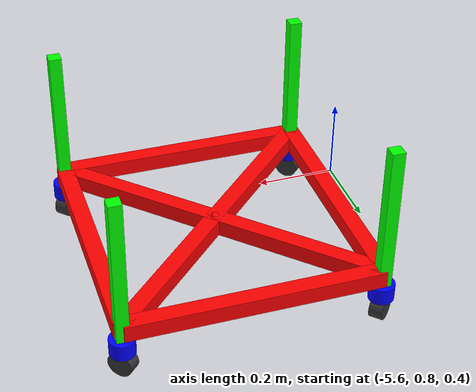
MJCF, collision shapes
<mujoco model="chassis">
    <compiler angle="radian" meshdir="meshes/"/>

    <option timestep="0.002" integrator="RK4"/>

    <default>
        <joint damping="0.1" armature="0.01"/>
        <geom friction="1.2 0.005 0.0001" condim="3"/>

        <default class="rail_ext">
            <joint damping="20.0" armature="0.1"/>
        </default>

        <default class="wheel_ext">
            <joint damping="0.05" armature="0.01"/>
        </default>

        <default class="visual_cam">
            <geom type="mesh" contype="0" conaffinity="0" group="1"/>
        </default>
    </default>

    <asset>
        <mesh name="base_link" file="meshes/base_link.stl"/>
        <mesh name="LF_rail_link" file="meshes/LF_rail_link.stl"/>
        <mesh name="LF_yaw_link" file="meshes/LF_yaw_link.stl"/>
        <mesh name="LF_wheel_link" file="meshes/LF_wheel_link.stl"/>
        <mesh name="LR_rail_link" file="meshes/LR_rail_link.stl"/>
        <mesh name="LR_yaw_link" file="meshes/LR_yaw_link.stl"/>
        <mesh name="LR_wheel_link" file="meshes/LR_wheel_link.stl"/>
        <mesh name="RF_rail_link" file="meshes/RF_rail_link.stl"/>
        <mesh name="RF_yaw_link" file="meshes/RF_yaw_link.stl"/>
        <mesh name="RF_wheel_link" file="meshes/RF_wheel_link.stl"/>
        <mesh name="RR_rail_link" file="meshes/RR_rail_link.stl"/>
        <mesh name="RR_yaw_link" file="meshes/RR_yaw_link.stl"/>
        <mesh name="RR_wheel_link" file="meshes/RR_wheel_link.stl"/>

        <mesh name="base_0" file="meshes/base_0.obj" scale="0.2 0.2 0.2"/>
        <mesh name="base_1" file="meshes/base_1.obj" scale="0.2 0.2 0.2"/>
        <mesh name="base_2" file="meshes/base_2.obj" scale="0.2 0.2 0.2"/>
        <mesh name="base_3" file="meshes/base_3.obj" scale="0.2 0.2 0.2"/>
        <mesh name="base_4" file="meshes/base_4.obj" scale="0.2 0.2 0.2"/>

        <material name="mat_dark"    rgba="0.2 0.2 0.2 1"/>
        <material name="mat_grey"    rgba="0.5 0.5 0.5 1"/>
        <material name="mat_silver"  rgba="0.8 0.8 0.8 1"/>
    </asset>

    <worldbody>
        <body name="base_link" pos="-5.2 1.4 0.5">
            <freejoint name="floating_base"/>
            <site name="imu_site" pos="0.0012 -0.3534 0.017" size="0.01" rgba="1 0 0 1"/>
            <inertial pos="0.001206 -0.353411 0.016987" mass="2.804" diaginertia="0.015653 0.013748 0.027267"/>

            <geom type="mesh" rgba="1 1 1 0.2" mesh="base_link" contype="0" conaffinity="0" group="1"/>

            <geom class="visual_cam" mesh="base_0" material="mat_silver"/> <geom class="visual_cam" mesh="base_1" material="mat_grey"/>   <geom class="visual_cam" mesh="base_2" material="mat_grey"/>
            <geom class="visual_cam" mesh="base_3" material="mat_silver"/>
            <geom class="visual_cam" mesh="base_4" material="mat_dark"/>   <camera name="rgb_camera" mode="fixed" fovy="90" pos="0 -0.5 0.1" euler="1.57 3.14 0"/>

            <geom type="box" size="0.02 0.3 0.02" pos="0.3 -0.354 0" rgba="1 0 0 0.6"/>
            <geom type="box" size="0.02 0.3 0.02" pos="-0.3 -0.354 0" rgba="1 0 0 0.6"/>
            <geom type="box" size="0.3 0.02 0.02" pos="0 -0.654 0" rgba="1 0 0 0.6"/>
            <geom type="box" size="0.3 0.02 0.02" pos="0 -0.054 0" rgba="1 0 0 0.6"/>
            <geom type="box" size="0.42 0.02 0.02" pos="0 -0.354 0" quat="0.9239 0 0 0.3827" rgba="1 0 0 0.6"/>
            <geom type="box" size="0.42 0.02 0.02" pos="0 -0.354 0" quat="0.9239 0 0 -0.3827" rgba="1 0 0 0.6"/>

            <body name="LF_rail_link" pos="0.30193 -0.654 0.33384" quat="0.707105 0 0 -0.707108">
                <joint name="LF_rail_joint" class="rail_ext" type="slide" axis="0 0 -1" range="0 0.25"/>
                <geom type="mesh" rgba="1 1 1 0.2" mesh="LF_rail_link" contype="0" conaffinity="0" group="1"/>
                <geom type="box" size="0.015 0.015 0.18" pos="0 0 -0.18" rgba="0 1 0 0.6"/>

                <body name="LF_yaw_link" pos="0 0 -0.3778">
                    <joint name="LF_yaw_joint" type="hinge" axis="0 0 1" limited="false"/>
                    <geom type="mesh" rgba="1 1 1 0.2" mesh="LF_yaw_link" contype="0" conaffinity="0" group="1"/>

                    <geom type="cylinder" size="0.03 0.02" pos="0 0 0" rgba="0 0 1 0.6"/>

                    <body name="LF_wheel_link" pos="0 0 -0.0465" quat="0.65328 0.653282 -0.270599 -0.270598">
                        <joint name="LF_wheel_joint" class="wheel_ext" type="hinge" axis="0 0 -1" limited="false"/>
                        <geom size="0.03 0.016" type="cylinder" rgba="0.2 0.2 0.2 1"
                            condim="3"
                            friction="1.0 0.005 0.0001"
                            solref="0.02 1"
                            solimp="0.9 0.95 0.001"
                        />
                    </body>
                </body>
            </body>

            <body name="RF_rail_link" pos="-0.29807 -0.654 0.33384" quat="0.707105 0 0 -0.707108">
                <joint name="RF_rail_joint" class="rail_ext" type="slide" axis="0 0 -1" range="0 0.25"/>
                <geom type="mesh" rgba="1 1 1 0.2" mesh="RF_rail_link" contype="0" conaffinity="0" group="1"/>
                <geom type="box" size="0.015 0.015 0.18" pos="0 0 -0.18" rgba="0 1 0 0.6"/>

                <body name="RF_yaw_link" pos="0 0 -0.3778">
                    <joint name="RF_yaw_joint" type="hinge" axis="0 0 1" limited="false"/>
                    <geom type="mesh" rgba="1 1 1 0.2" mesh="RF_yaw_link" contype="0" conaffinity="0" group="1"/>

                    <geom type="cylinder" size="0.03 0.02" pos="0 0 0" rgba="0 0 1 0.6"/>

                    <body name="RF_wheel_link" pos="0 0 -0.0465" quat="0.270596 0.270597 -0.653283 -0.653281">
                        <joint name="RF_wheel_joint" class="wheel_ext" type="hinge" axis="0 0 -1" limited="false"/>
                        <geom size="0.03 0.016" type="cylinder" rgba="0.2 0.2 0.2 1"
                            condim="3"
                            friction="1.0 0.005 0.0001"
                            solref="0.02 1"
                            solimp="0.9 0.95 0.001"
                        />
                    </body>
                </body>
            </body>

            <body name="LR_rail_link" pos="0.30193 -0.054 0.33384" quat="0.707105 0 0 -0.707108">
                <joint name="LR_rail_joint" class="rail_ext" type="slide" axis="0 0 -1" range="0 0.25"/>
                <geom type="mesh" rgba="1 1 1 0.2" mesh="LR_rail_link" contype="0" conaffinity="0" group="1"/>
                <geom type="box" size="0.015 0.015 0.18" pos="0 0 -0.18" rgba="0 1 0 0.6"/>

                <body name="LR_yaw_link" pos="0 0 -0.3778">
                    <joint name="LR_yaw_joint" type="hinge" axis="0 0 1" limited="false"/>
                    <geom type="mesh" rgba="1 1 1 0.2" mesh="LR_yaw_link" contype="0" conaffinity="0" group="1"/>

                    <geom type="cylinder" size="0.03 0.02" pos="0 0 0" rgba="0 0 1 0.6"/>

                    <body name="LR_wheel_link" pos="0 0 -0.0465" quat="0.65328 0.653282 0.270599 0.270598">
                        <joint name="LR_wheel_joint" class="wheel_ext" type="hinge" axis="0 0 -1" limited="false"/>
                        <geom size="0.03 0.016" type="cylinder" rgba="0.2 0.2 0.2 1"
                            condim="3"
                            friction="1.0 0.005 0.0001"
                            solref="0.02 1"
                            solimp="0.9 0.95 0.001"
                        />
                    </body>
                </body>
            </body>

            <body name="RR_rail_link" pos="-0.29807 -0.054 0.33384" quat="0.707105 0 0 -0.707108">
                <joint name="RR_rail_joint" class="rail_ext" type="slide" axis="0 0 -1" range="0 0.25"/>
                <geom type="mesh" rgba="1 1 1 0.2" mesh="RR_rail_link" contype="0" conaffinity="0" group="1"/>
                <geom type="box" size="0.015 0.015 0.18" pos="0 0 -0.18" rgba="0 1 0 0.6"/>

                <body name="RR_yaw_link" pos="0 0 -0.3778">
                    <joint name="RR_yaw_joint" type="hinge" axis="0 0 1" limited="false"/>
                    <geom type="mesh" rgba="1 1 1 0.2" mesh="RR_yaw_link" contype="0" conaffinity="0" group="1"/>

                    <geom type="cylinder" size="0.03 0.02" pos="0 0 0" rgba="0 0 1 0.6"/>

                    <body name="RR_wheel_link" pos="0 0 -0.0465" quat="0.270596 0.270597 0.653283 0.653281">
                        <joint name="RR_wheel_joint" class="wheel_ext" type="hinge" axis="0 0 -1" limited="false"/>
                        <geom size="0.03 0.016" type="cylinder" rgba="0.2 0.2 0.2 1"
                            condim="3"
                            friction="1.0 0.005 0.0001"
                            solref="0.02 1"
                            solimp="0.9 0.95 0.001"
                        />
                    </body>
                </body>
            </body>

        </body>
    </worldbody>

    <contact>
        <exclude body1="base_link" body2="LF_rail_link"/>
        <exclude body1="base_link" body2="RF_rail_link"/>
        <exclude body1="base_link" body2="LR_rail_link"/>
        <exclude body1="base_link" body2="RR_rail_link"/>

        <exclude body1="LF_rail_link" body2="LF_yaw_link"/>
        <exclude body1="RF_rail_link" body2="RF_yaw_link"/>
        <exclude body1="LR_rail_link" body2="LR_yaw_link"/>
        <exclude body1="RR_rail_link" body2="RR_yaw_link"/>

        <exclude body1="LF_yaw_link" body2="LF_wheel_link"/>
        <exclude body1="RF_yaw_link" body2="RF_wheel_link"/>
        <exclude body1="LR_yaw_link" body2="LR_wheel_link"/>
        <exclude body1="RR_yaw_link" body2="RR_wheel_link"/>
    </contact>

    <actuator>
        <position name="LF_steer" joint="LF_yaw_joint" kp="500" forcerange="-10.0 10.0" ctrlrange="-3.1416 3.1416"/>
        <position name="RF_steer" joint="RF_yaw_joint" kp="500" forcerange="-10.0 10.0" ctrlrange="-3.1416 3.1416"/>
        <position name="LR_steer" joint="LR_yaw_joint" kp="500" forcerange="-10.0 10.0" ctrlrange="-3.1416 3.1416"/>
        <position name="RR_steer" joint="RR_yaw_joint" kp="500" forcerange="-10.0 10.0" ctrlrange="-3.1416 3.1416"/>

        <velocity name="LF_drive" joint="LF_wheel_joint" kv="20" forcerange="-50.0 50.0" ctrlrange="-100 100"/>
        <velocity name="RF_drive" joint="RF_wheel_joint" kv="20" forcerange="-50.0 50.0" ctrlrange="-100 100"/>
        <velocity name="LR_drive" joint="LR_wheel_joint" kv="20" forcerange="-50.0 50.0" ctrlrange="-100 100"/>
        <velocity name="RR_drive" joint="RR_wheel_joint" kv="20" forcerange="-50.0 50.0" ctrlrange="-100 100"/>

        <position name="LF_rail" joint="LF_rail_joint" kp="1000" forcerange="-500 500" ctrlrange="0 0.25"/>
        <position name="RF_rail" joint="RF_rail_joint" kp="1000" forcerange="-500 500" ctrlrange="0 0.25"/>
        <position name="LR_rail" joint="LR_rail_joint" kp="1000" forcerange="-500 500" ctrlrange="0 0.25"/>
        <position name="RR_rail" joint="RR_rail_joint" kp="1000" forcerange="-500 500" ctrlrange="0 0.25"/>
    </actuator>

    <sensor>
        <accelerometer name="imu_acc" site="imu_site"/>
        <gyro name="imu_gyro" site="imu_site"/>

        <jointpos name="LF_steer_pos" joint="LF_yaw_joint"/>
        <jointpos name="RF_steer_pos" joint="RF_yaw_joint"/>
        <jointpos name="LR_steer_pos" joint="LR_yaw_joint"/>
        <jointpos name="RR_steer_pos" joint="RR_yaw_joint"/>

        <jointvel name="LF_drive_vel" joint="LF_wheel_joint"/>
        <jointvel name="RF_drive_vel" joint="RF_wheel_joint"/>
        <jointvel name="LR_drive_vel" joint="LR_wheel_joint"/>
        <jointvel name="RR_drive_vel" joint="RR_wheel_joint"/>

        <jointactuatorfrc name="LF_s_t" joint="LF_yaw_joint"/>
        <jointactuatorfrc name="RF_s_t" joint="RF_yaw_joint"/>
        <jointactuatorfrc name="LR_s_t" joint="LR_yaw_joint"/>
        <jointactuatorfrc name="RR_s_t" joint="RR_yaw_joint"/>
        <jointactuatorfrc name="LF_d_t" joint="LF_wheel_joint"/>
        <jointactuatorfrc name="RF_d_t" joint="RF_wheel_joint"/>
        <jointactuatorfrc name="LR_d_t" joint="LR_wheel_joint"/>
        <jointactuatorfrc name="RR_d_t" joint="RR_wheel_joint"/>
    </sensor>
</mujoco>
